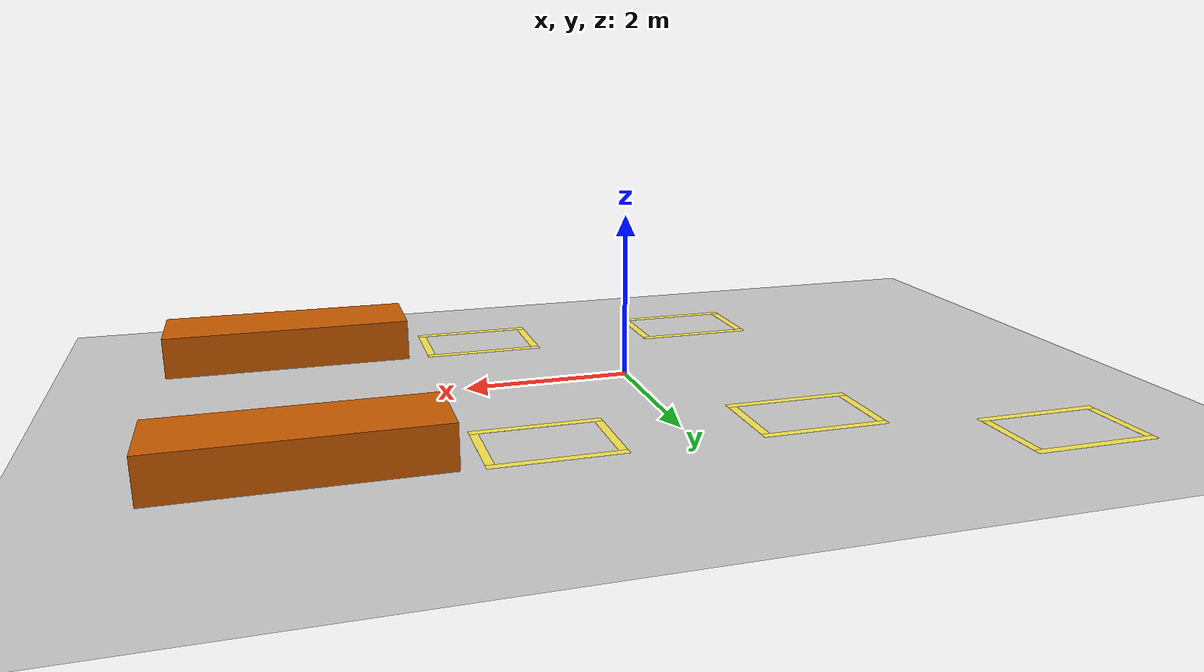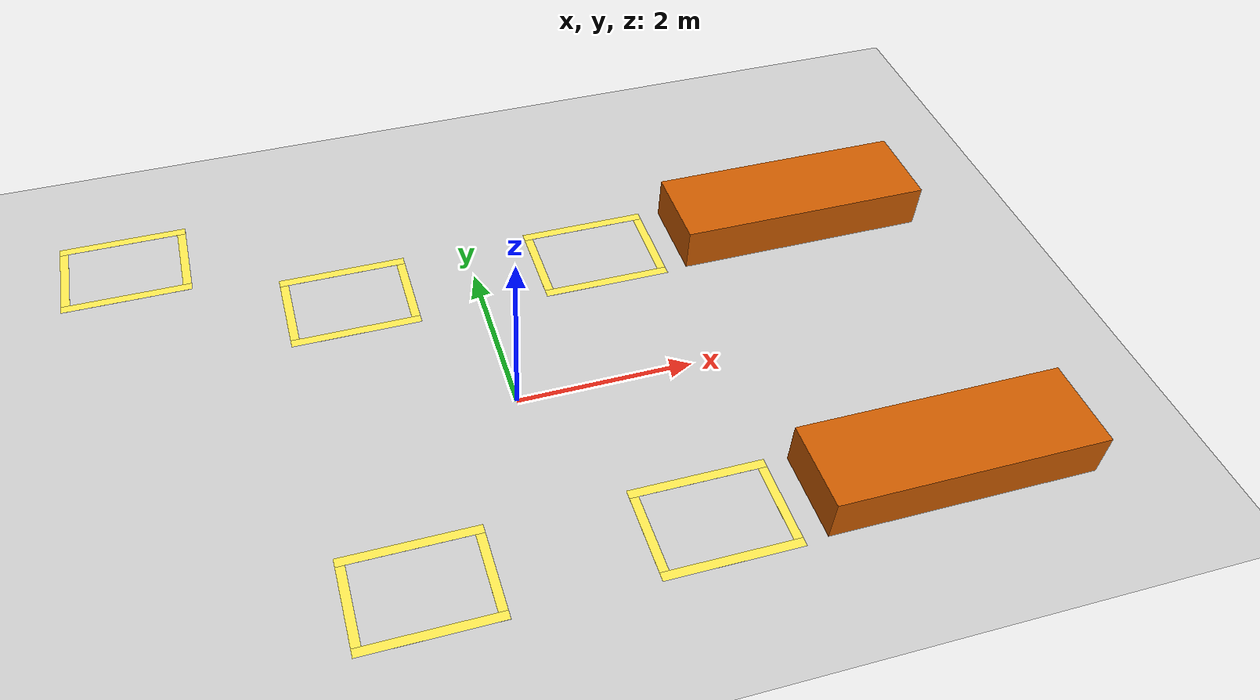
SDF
<sdf version="1.7">
 <world name="default">
  <model name="ground_plane">
   <static>1</static>
   <link name="link">
    <collision name="collision">
     <geometry><plane><normal>0 0 1</normal><size>100 100</size></plane></geometry>
     <surface>
      <contact><collide_bitmask>65535</collide_bitmask></contact>
      <friction><ode><mu>100</mu><mu2>50</mu2></ode></friction>
     </surface>
    </collision>
    <visual name="visual">
     <cast_shadows>0</cast_shadows>
     <geometry><plane><normal>0 0 1</normal><size>100 100</size></plane></geometry>
     <material>
      <script><uri>file://media/materials/scripts/gazebo.material</uri><name>Gazebo/Grey</name></script>
     </material>
    </visual>
   </link>
  </model>
  <model name="ws_3m">
   <link name="link_0">
    <inertial>
     <mass>1</mass>
     <inertia>
      <ixx>0.166667</ixx>
      <ixy>0</ixy>
      <ixz>0</ixz>
      <iyy>0.166667</iyy>
      <iyz>0</iyz>
      <izz>0.166667</izz>
     </inertia>
    </inertial>
    <visual name="visual">
     <geometry><box><size>3 1 1</size></box></geometry>
     <material>
      <lighting>1</lighting>
      <script><uri>file://media/materials/scripts/gazebo.material</uri><name>Gazebo/Grey</name></script>
      <shader type="pixel"><normal_map>__default__</normal_map></shader>
      <ambient>0.808 0.361 0 1</ambient>
      <diffuse>0.7 0.7 0.7 1</diffuse>
      <specular>0.01 0.01 0.01 1</specular>
      <emissive>0 0 0 1</emissive>
     </material>
    </visual>
    <collision name="collision">
     <geometry><box><size>3 1 1</size></box></geometry>
     <surface>
      <friction>
       <ode><mu>1</mu><mu2>1</mu2><fdir1>0 0 0</fdir1><slip1>0</slip1><slip2>0</slip2></ode>
       <torsional>
        <coefficient>1</coefficient>
        <patch_radius>0</patch_radius>
        <surface_radius>0</surface_radius>
        <use_patch_radius>1</use_patch_radius>
        <ode><slip>0</slip></ode>
       </torsional>
      </friction>
      <bounce><restitution_coefficient>0</restitution_coefficient><threshold>1e+06</threshold></bounce>
      <contact>
       <collide_without_contact>0</collide_without_contact>
       <collide_without_contact_bitmask>1</collide_without_contact_bitmask>
       <collide_bitmask>1</collide_bitmask>
       <ode>
        <soft_cfm>0</soft_cfm>
        <soft_erp>0.2</soft_erp>
        <kp>1e+13</kp>
        <kd>1</kd>
        <max_vel>0.01</max_vel>
        <min_depth>0</min_depth>
       </ode>
       <bullet>
        <split_impulse>1</split_impulse>
        <split_impulse_penetration_threshold>-0.01</split_impulse_penetration_threshold>
        <soft_cfm>0</soft_cfm>
        <soft_erp>0.2</soft_erp>
        <kp>1e+13</kp>
        <kd>1</kd>
       </bullet>
      </contact>
     </surface>
    </collision>
   </link>
   <static>1</static>
   <pose>4 2 0 0 -0 0</pose>
  </model>
  <model name="ws_3m_0">
   <link name="link_0">
    <inertial>
     <mass>1</mass>
     <inertia>
      <ixx>0.166667</ixx>
      <ixy>0</ixy>
      <ixz>0</ixz>
      <iyy>0.166667</iyy>
      <iyz>0</iyz>
      <izz>0.166667</izz>
     </inertia>
    </inertial>
    <visual name="visual">
     <geometry><box><size>3 1 1</size></box></geometry>
     <material>
      <lighting>1</lighting>
      <script><uri>file://media/materials/scripts/gazebo.material</uri><name>Gazebo/Grey</name></script>
      <shader type="pixel"><normal_map>__default__</normal_map></shader>
      <ambient>0.808 0.361 0 1</ambient>
      <diffuse>0.7 0.7 0.7 1</diffuse>
      <specular>0.01 0.01 0.01 1</specular>
      <emissive>0 0 0 1</emissive>
     </material>
    </visual>
    <collision name="collision">
     <geometry><box><size>3 1 1</size></box></geometry>
     <surface>
      <friction>
       <ode><mu>1</mu><mu2>1</mu2><fdir1>0 0 0</fdir1><slip1>0</slip1><slip2>0</slip2></ode>
       <torsional>
        <coefficient>1</coefficient>
        <patch_radius>0</patch_radius>
        <surface_radius>0</surface_radius>
        <use_patch_radius>1</use_patch_radius>
        <ode><slip>0</slip></ode>
       </torsional>
      </friction>
      <bounce><restitution_coefficient>0</restitution_coefficient><threshold>1e+06</threshold></bounce>
      <contact>
       <collide_without_contact>0</collide_without_contact>
       <collide_without_contact_bitmask>1</collide_without_contact_bitmask>
       <collide_bitmask>1</collide_bitmask>
       <ode>
        <soft_cfm>0</soft_cfm>
        <soft_erp>0.2</soft_erp>
        <kp>1e+13</kp>
        <kd>1</kd>
        <max_vel>0.01</max_vel>
        <min_depth>0</min_depth>
       </ode>
       <bullet>
        <split_impulse>1</split_impulse>
        <split_impulse_penetration_threshold>-0.01</split_impulse_penetration_threshold>
        <soft_cfm>0</soft_cfm>
        <soft_erp>0.2</soft_erp>
        <kp>1e+13</kp>
        <kd>1</kd>
       </bullet>
      </contact>
     </surface>
    </collision>
   </link>
   <static>1</static>
   <pose>4 -2 0 0 -0 0</pose>
  </model>
  <model name="strip_5">
   <link name="link_0">
    <inertial>
     <mass>1</mass>
     <inertia>
      <ixx>0.166667</ixx>
      <ixy>0</ixy>
      <ixz>0</ixz>
      <iyy>0.166667</iyy>
      <iyz>0</iyz>
      <izz>0.166667</izz>
     </inertia>
    </inertial>
    <pose>0 0.5 0 0 -0 0</pose>
    <visual name="visual">
     <geometry><box><size>1.5 0.1 0.001</size></box></geometry>
     <material>
      <lighting>1</lighting>
      <script><uri>file://media/materials/scripts/gazebo.material</uri><name>Gazebo/Grey</name></script>
      <shader type="pixel"><normal_map>__default__</normal_map></shader>
      <ambient>0.988 0.914 0.31 1</ambient>
      <diffuse>0.7 0.7 0.7 1</diffuse>
      <specular>0.01 0.01 0.01 1</specular>
      <emissive>0 0 0 1</emissive>
     </material>
    </visual>
    <collision name="collision">
     <geometry><box><size>1.5 0.1 0.001</size></box></geometry>
     <surface>
      <friction>
       <ode><mu>1</mu><mu2>1</mu2><fdir1>0 0 0</fdir1><slip1>0</slip1><slip2>0</slip2></ode>
       <torsional>
        <coefficient>1</coefficient>
        <patch_radius>0</patch_radius>
        <surface_radius>0</surface_radius>
        <use_patch_radius>1</use_patch_radius>
        <ode><slip>0</slip></ode>
       </torsional>
      </friction>
      <bounce><restitution_coefficient>0</restitution_coefficient><threshold>1e+06</threshold></bounce>
      <contact>
       <collide_without_contact>0</collide_without_contact>
       <collide_without_contact_bitmask>1</collide_without_contact_bitmask>
       <collide_bitmask>1</collide_bitmask>
       <ode>
        <soft_cfm>0</soft_cfm>
        <soft_erp>0.2</soft_erp>
        <kp>1e+13</kp>
        <kd>1</kd>
        <max_vel>0.01</max_vel>
        <min_depth>0</min_depth>
       </ode>
       <bullet>
        <split_impulse>1</split_impulse>
        <split_impulse_penetration_threshold>-0.01</split_impulse_penetration_threshold>
        <soft_cfm>0</soft_cfm>
        <soft_erp>0.2</soft_erp>
        <kp>1e+13</kp>
        <kd>1</kd>
       </bullet>
      </contact>
     </surface>
    </collision>
   </link>
   <link name="link_0_clone">
    <inertial>
     <mass>1</mass>
     <inertia>
      <ixx>0.166667</ixx>
      <ixy>0</ixy>
      <ixz>0</ixz>
      <iyy>0.166667</iyy>
      <iyz>0</iyz>
      <izz>0.166667</izz>
     </inertia>
    </inertial>
    <pose>0 -0.5 0 0 -0 0</pose>
    <visual name="visual">
     <geometry><box><size>1.5 0.1 0.001</size></box></geometry>
     <material>
      <lighting>1</lighting>
      <script><uri>file://media/materials/scripts/gazebo.material</uri><name>Gazebo/Grey</name></script>
      <shader type="pixel"><normal_map>__default__</normal_map></shader>
      <ambient>0.988 0.914 0.31 1</ambient>
      <diffuse>0.7 0.7 0.7 1</diffuse>
      <specular>0.01 0.01 0.01 1</specular>
      <emissive>0 0 0 1</emissive>
     </material>
    </visual>
    <collision name="collision">
     <geometry><box><size>1.5 0.1 0.001</size></box></geometry>
     <surface>
      <friction>
       <ode><mu>1</mu><mu2>1</mu2><fdir1>0 0 0</fdir1><slip1>0</slip1><slip2>0</slip2></ode>
       <torsional>
        <coefficient>1</coefficient>
        <patch_radius>0</patch_radius>
        <surface_radius>0</surface_radius>
        <use_patch_radius>1</use_patch_radius>
        <ode><slip>0</slip></ode>
       </torsional>
      </friction>
      <bounce><restitution_coefficient>0</restitution_coefficient><threshold>1e+06</threshold></bounce>
      <contact>
       <collide_without_contact>0</collide_without_contact>
       <collide_without_contact_bitmask>1</collide_without_contact_bitmask>
       <collide_bitmask>1</collide_bitmask>
       <ode>
        <soft_cfm>0</soft_cfm>
        <soft_erp>0.2</soft_erp>
        <kp>1e+13</kp>
        <kd>1</kd>
        <max_vel>0.01</max_vel>
        <min_depth>0</min_depth>
       </ode>
       <bullet>
        <split_impulse>1</split_impulse>
        <split_impulse_penetration_threshold>-0.01</split_impulse_penetration_threshold>
        <soft_cfm>0</soft_cfm>
        <soft_erp>0.2</soft_erp>
        <kp>1e+13</kp>
        <kd>1</kd>
       </bullet>
      </contact>
     </surface>
    </collision>
   </link>
   <link name="link_1">
    <inertial>
     <mass>1</mass>
     <inertia>
      <ixx>0.166667</ixx>
      <ixy>0</ixy>
      <ixz>0</ixz>
      <iyy>0.166667</iyy>
      <iyz>0</iyz>
      <izz>0.166667</izz>
     </inertia>
    </inertial>
    <pose>0.7 0 0 0 -0 0</pose>
    <visual name="visual">
     <geometry><box><size>0.1 0.9 0.001</size></box></geometry>
     <material>
      <lighting>1</lighting>
      <script><uri>file://media/materials/scripts/gazebo.material</uri><name>Gazebo/Grey</name></script>
      <shader type="pixel"><normal_map>__default__</normal_map></shader>
      <ambient>0.988 0.914 0.31 1</ambient>
      <diffuse>0.7 0.7 0.7 1</diffuse>
      <specular>0.01 0.01 0.01 1</specular>
      <emissive>0 0 0 1</emissive>
     </material>
    </visual>
    <collision name="collision">
     <geometry><box><size>0.1 0.9 0.001</size></box></geometry>
     <surface>
      <friction>
       <ode><mu>1</mu><mu2>1</mu2><fdir1>0 0 0</fdir1><slip1>0</slip1><slip2>0</slip2></ode>
       <torsional>
        <coefficient>1</coefficient>
        <patch_radius>0</patch_radius>
        <surface_radius>0</surface_radius>
        <use_patch_radius>1</use_patch_radius>
        <ode><slip>0</slip></ode>
       </torsional>
      </friction>
      <bounce><restitution_coefficient>0</restitution_coefficient><threshold>1e+06</threshold></bounce>
      <contact>
       <collide_without_contact>0</collide_without_contact>
       <collide_without_contact_bitmask>1</collide_without_contact_bitmask>
       <collide_bitmask>1</collide_bitmask>
       <ode>
        <soft_cfm>0</soft_cfm>
        <soft_erp>0.2</soft_erp>
        <kp>1e+13</kp>
        <kd>1</kd>
        <max_vel>0.01</max_vel>
        <min_depth>0</min_depth>
       </ode>
       <bullet>
        <split_impulse>1</split_impulse>
        <split_impulse_penetration_threshold>-0.01</split_impulse_penetration_threshold>
        <soft_cfm>0</soft_cfm>
        <soft_erp>0.2</soft_erp>
        <kp>1e+13</kp>
        <kd>1</kd>
       </bullet>
      </contact>
     </surface>
    </collision>
   </link>
   <link name="link_1_clone">
    <inertial>
     <mass>1</mass>
     <inertia>
      <ixx>0.166667</ixx>
      <ixy>0</ixy>
      <ixz>0</ixz>
      <iyy>0.166667</iyy>
      <iyz>0</iyz>
      <izz>0.166667</izz>
     </inertia>
    </inertial>
    <pose>-0.7 0 0 0 -0 0</pose>
    <visual name="visual">
     <geometry><box><size>0.1 0.9 0.001</size></box></geometry>
     <material>
      <lighting>1</lighting>
      <script><uri>file://media/materials/scripts/gazebo.material</uri><name>Gazebo/Grey</name></script>
      <shader type="pixel"><normal_map>__default__</normal_map></shader>
      <ambient>0.988 0.914 0.31 1</ambient>
      <diffuse>0.7 0.7 0.7 1</diffuse>
      <specular>0.01 0.01 0.01 1</specular>
      <emissive>0 0 0 1</emissive>
     </material>
    </visual>
    <collision name="collision">
     <geometry><box><size>0.1 0.9 0.001</size></box></geometry>
     <surface>
      <friction>
       <ode><mu>1</mu><mu2>1</mu2><fdir1>0 0 0</fdir1><slip1>0</slip1><slip2>0</slip2></ode>
       <torsional>
        <coefficient>1</coefficient>
        <patch_radius>0</patch_radius>
        <surface_radius>0</surface_radius>
        <use_patch_radius>1</use_patch_radius>
        <ode><slip>0</slip></ode>
       </torsional>
      </friction>
      <bounce><restitution_coefficient>0</restitution_coefficient><threshold>1e+06</threshold></bounce>
      <contact>
       <collide_without_contact>0</collide_without_contact>
       <collide_without_contact_bitmask>1</collide_without_contact_bitmask>
       <collide_bitmask>1</collide_bitmask>
       <ode>
        <soft_cfm>0</soft_cfm>
        <soft_erp>0.2</soft_erp>
        <kp>1e+13</kp>
        <kd>1</kd>
        <max_vel>0.01</max_vel>
        <min_depth>0</min_depth>
       </ode>
       <bullet>
        <split_impulse>1</split_impulse>
        <split_impulse_penetration_threshold>-0.01</split_impulse_penetration_threshold>
        <soft_cfm>0</soft_cfm>
        <soft_erp>0.2</soft_erp>
        <kp>1e+13</kp>
        <kd>1</kd>
       </bullet>
      </contact>
     </surface>
    </collision>
   </link>
   <static>1</static>
   <pose>1.5 2 0 0 -0 0</pose>
  </model>
  <model name="strip_6">
   <link name="link_0">
    <inertial>
     <mass>1</mass>
     <inertia>
      <ixx>0.166667</ixx>
      <ixy>0</ixy>
      <ixz>0</ixz>
      <iyy>0.166667</iyy>
      <iyz>0</iyz>
      <izz>0.166667</izz>
     </inertia>
    </inertial>
    <pose>0 0.5 0 0 -0 0</pose>
    <visual name="visual">
     <geometry><box><size>1.5 0.1 0.001</size></box></geometry>
     <material>
      <lighting>1</lighting>
      <script><uri>file://media/materials/scripts/gazebo.material</uri><name>Gazebo/Grey</name></script>
      <shader type="pixel"><normal_map>__default__</normal_map></shader>
      <ambient>0.988 0.914 0.31 1</ambient>
      <diffuse>0.7 0.7 0.7 1</diffuse>
      <specular>0.01 0.01 0.01 1</specular>
      <emissive>0 0 0 1</emissive>
     </material>
    </visual>
    <collision name="collision">
     <geometry><box><size>1.5 0.1 0.001</size></box></geometry>
     <surface>
      <friction>
       <ode><mu>1</mu><mu2>1</mu2><fdir1>0 0 0</fdir1><slip1>0</slip1><slip2>0</slip2></ode>
       <torsional>
        <coefficient>1</coefficient>
        <patch_radius>0</patch_radius>
        <surface_radius>0</surface_radius>
        <use_patch_radius>1</use_patch_radius>
        <ode><slip>0</slip></ode>
       </torsional>
      </friction>
      <bounce><restitution_coefficient>0</restitution_coefficient><threshold>1e+06</threshold></bounce>
      <contact>
       <collide_without_contact>0</collide_without_contact>
       <collide_without_contact_bitmask>1</collide_without_contact_bitmask>
       <collide_bitmask>1</collide_bitmask>
       <ode>
        <soft_cfm>0</soft_cfm>
        <soft_erp>0.2</soft_erp>
        <kp>1e+13</kp>
        <kd>1</kd>
        <max_vel>0.01</max_vel>
        <min_depth>0</min_depth>
       </ode>
       <bullet>
        <split_impulse>1</split_impulse>
        <split_impulse_penetration_threshold>-0.01</split_impulse_penetration_threshold>
        <soft_cfm>0</soft_cfm>
        <soft_erp>0.2</soft_erp>
        <kp>1e+13</kp>
        <kd>1</kd>
       </bullet>
      </contact>
     </surface>
    </collision>
   </link>
   <link name="link_0_clone">
    <inertial>
     <mass>1</mass>
     <inertia>
      <ixx>0.166667</ixx>
      <ixy>0</ixy>
      <ixz>0</ixz>
      <iyy>0.166667</iyy>
      <iyz>0</iyz>
      <izz>0.166667</izz>
     </inertia>
    </inertial>
    <pose>0 -0.5 0 0 -0 0</pose>
    <visual name="visual">
     <geometry><box><size>1.5 0.1 0.001</size></box></geometry>
     <material>
      <lighting>1</lighting>
      <script><uri>file://media/materials/scripts/gazebo.material</uri><name>Gazebo/Grey</name></script>
      <shader type="pixel"><normal_map>__default__</normal_map></shader>
      <ambient>0.988 0.914 0.31 1</ambient>
      <diffuse>0.7 0.7 0.7 1</diffuse>
      <specular>0.01 0.01 0.01 1</specular>
      <emissive>0 0 0 1</emissive>
     </material>
    </visual>
    <collision name="collision">
     <geometry><box><size>1.5 0.1 0.001</size></box></geometry>
     <surface>
      <friction>
       <ode><mu>1</mu><mu2>1</mu2><fdir1>0 0 0</fdir1><slip1>0</slip1><slip2>0</slip2></ode>
       <torsional>
        <coefficient>1</coefficient>
        <patch_radius>0</patch_radius>
        <surface_radius>0</surface_radius>
        <use_patch_radius>1</use_patch_radius>
        <ode><slip>0</slip></ode>
       </torsional>
      </friction>
      <bounce><restitution_coefficient>0</restitution_coefficient><threshold>1e+06</threshold></bounce>
      <contact>
       <collide_without_contact>0</collide_without_contact>
       <collide_without_contact_bitmask>1</collide_without_contact_bitmask>
       <collide_bitmask>1</collide_bitmask>
       <ode>
        <soft_cfm>0</soft_cfm>
        <soft_erp>0.2</soft_erp>
        <kp>1e+13</kp>
        <kd>1</kd>
        <max_vel>0.01</max_vel>
        <min_depth>0</min_depth>
       </ode>
       <bullet>
        <split_impulse>1</split_impulse>
        <split_impulse_penetration_threshold>-0.01</split_impulse_penetration_threshold>
        <soft_cfm>0</soft_cfm>
        <soft_erp>0.2</soft_erp>
        <kp>1e+13</kp>
        <kd>1</kd>
       </bullet>
      </contact>
     </surface>
    </collision>
   </link>
   <link name="link_1">
    <inertial>
     <mass>1</mass>
     <inertia>
      <ixx>0.166667</ixx>
      <ixy>0</ixy>
      <ixz>0</ixz>
      <iyy>0.166667</iyy>
      <iyz>0</iyz>
      <izz>0.166667</izz>
     </inertia>
    </inertial>
    <pose>0.7 0 0 0 -0 0</pose>
    <visual name="visual">
     <geometry><box><size>0.1 0.9 0.001</size></box></geometry>
     <material>
      <lighting>1</lighting>
      <script><uri>file://media/materials/scripts/gazebo.material</uri><name>Gazebo/Grey</name></script>
      <shader type="pixel"><normal_map>__default__</normal_map></shader>
      <ambient>0.988 0.914 0.31 1</ambient>
      <diffuse>0.7 0.7 0.7 1</diffuse>
      <specular>0.01 0.01 0.01 1</specular>
      <emissive>0 0 0 1</emissive>
     </material>
    </visual>
    <collision name="collision">
     <geometry><box><size>0.1 0.9 0.001</size></box></geometry>
     <surface>
      <friction>
       <ode><mu>1</mu><mu2>1</mu2><fdir1>0 0 0</fdir1><slip1>0</slip1><slip2>0</slip2></ode>
       <torsional>
        <coefficient>1</coefficient>
        <patch_radius>0</patch_radius>
        <surface_radius>0</surface_radius>
        <use_patch_radius>1</use_patch_radius>
        <ode><slip>0</slip></ode>
       </torsional>
      </friction>
      <bounce><restitution_coefficient>0</restitution_coefficient><threshold>1e+06</threshold></bounce>
      <contact>
       <collide_without_contact>0</collide_without_contact>
       <collide_without_contact_bitmask>1</collide_without_contact_bitmask>
       <collide_bitmask>1</collide_bitmask>
       <ode>
        <soft_cfm>0</soft_cfm>
        <soft_erp>0.2</soft_erp>
        <kp>1e+13</kp>
        <kd>1</kd>
        <max_vel>0.01</max_vel>
        <min_depth>0</min_depth>
       </ode>
       <bullet>
        <split_impulse>1</split_impulse>
        <split_impulse_penetration_threshold>-0.01</split_impulse_penetration_threshold>
        <soft_cfm>0</soft_cfm>
        <soft_erp>0.2</soft_erp>
        <kp>1e+13</kp>
        <kd>1</kd>
       </bullet>
      </contact>
     </surface>
    </collision>
   </link>
   <link name="link_1_clone">
    <inertial>
     <mass>1</mass>
     <inertia>
      <ixx>0.166667</ixx>
      <ixy>0</ixy>
      <ixz>0</ixz>
      <iyy>0.166667</iyy>
      <iyz>0</iyz>
      <izz>0.166667</izz>
     </inertia>
    </inertial>
    <pose>-0.7 0 0 0 -0 0</pose>
    <visual name="visual">
     <geometry><box><size>0.1 0.9 0.001</size></box></geometry>
     <material>
      <lighting>1</lighting>
      <script><uri>file://media/materials/scripts/gazebo.material</uri><name>Gazebo/Grey</name></script>
      <shader type="pixel"><normal_map>__default__</normal_map></shader>
      <ambient>0.988 0.914 0.31 1</ambient>
      <diffuse>0.7 0.7 0.7 1</diffuse>
      <specular>0.01 0.01 0.01 1</specular>
      <emissive>0 0 0 1</emissive>
     </material>
    </visual>
    <collision name="collision">
     <geometry><box><size>0.1 0.9 0.001</size></box></geometry>
     <surface>
      <friction>
       <ode><mu>1</mu><mu2>1</mu2><fdir1>0 0 0</fdir1><slip1>0</slip1><slip2>0</slip2></ode>
       <torsional>
        <coefficient>1</coefficient>
        <patch_radius>0</patch_radius>
        <surface_radius>0</surface_radius>
        <use_patch_radius>1</use_patch_radius>
        <ode><slip>0</slip></ode>
       </torsional>
      </friction>
      <bounce><restitution_coefficient>0</restitution_coefficient><threshold>1e+06</threshold></bounce>
      <contact>
       <collide_without_contact>0</collide_without_contact>
       <collide_without_contact_bitmask>1</collide_without_contact_bitmask>
       <collide_bitmask>1</collide_bitmask>
       <ode>
        <soft_cfm>0</soft_cfm>
        <soft_erp>0.2</soft_erp>
        <kp>1e+13</kp>
        <kd>1</kd>
        <max_vel>0.01</max_vel>
        <min_depth>0</min_depth>
       </ode>
       <bullet>
        <split_impulse>1</split_impulse>
        <split_impulse_penetration_threshold>-0.01</split_impulse_penetration_threshold>
        <soft_cfm>0</soft_cfm>
        <soft_erp>0.2</soft_erp>
        <kp>1e+13</kp>
        <kd>1</kd>
       </bullet>
      </contact>
     </surface>
    </collision>
   </link>
   <static>1</static>
   <pose>1.5 -2 0 0 -0 0</pose>
  </model>
  <model name="strip_7">
   <link name="link_0">
    <inertial>
     <mass>1</mass>
     <inertia>
      <ixx>0.166667</ixx>
      <ixy>0</ixy>
      <ixz>0</ixz>
      <iyy>0.166667</iyy>
      <iyz>0</iyz>
      <izz>0.166667</izz>
     </inertia>
    </inertial>
    <pose>0 0.5 0 0 -0 0</pose>
    <visual name="visual">
     <geometry><box><size>1.5 0.1 0.001</size></box></geometry>
     <material>
      <lighting>1</lighting>
      <script><uri>file://media/materials/scripts/gazebo.material</uri><name>Gazebo/Grey</name></script>
      <shader type="pixel"><normal_map>__default__</normal_map></shader>
      <ambient>0.988 0.914 0.31 1</ambient>
      <diffuse>0.7 0.7 0.7 1</diffuse>
      <specular>0.01 0.01 0.01 1</specular>
      <emissive>0 0 0 1</emissive>
     </material>
    </visual>
    <collision name="collision">
     <geometry><box><size>1.5 0.1 0.001</size></box></geometry>
     <surface>
      <friction>
       <ode><mu>1</mu><mu2>1</mu2><fdir1>0 0 0</fdir1><slip1>0</slip1><slip2>0</slip2></ode>
       <torsional>
        <coefficient>1</coefficient>
        <patch_radius>0</patch_radius>
        <surface_radius>0</surface_radius>
        <use_patch_radius>1</use_patch_radius>
        <ode><slip>0</slip></ode>
       </torsional>
      </friction>
      <bounce><restitution_coefficient>0</restitution_coefficient><threshold>1e+06</threshold></bounce>
      <contact>
       <collide_without_contact>0</collide_without_contact>
       <collide_without_contact_bitmask>1</collide_without_contact_bitmask>
       <collide_bitmask>1</collide_bitmask>
       <ode>
        <soft_cfm>0</soft_cfm>
        <soft_erp>0.2</soft_erp>
        <kp>1e+13</kp>
        <kd>1</kd>
        <max_vel>0.01</max_vel>
        <min_depth>0</min_depth>
       </ode>
       <bullet>
        <split_impulse>1</split_impulse>
        <split_impulse_penetration_threshold>-0.01</split_impulse_penetration_threshold>
        <soft_cfm>0</soft_cfm>
        <soft_erp>0.2</soft_erp>
        <kp>1e+13</kp>
        <kd>1</kd>
       </bullet>
      </contact>
     </surface>
    </collision>
   </link>
   <link name="link_0_clone">
    <inertial>
     <mass>1</mass>
     <inertia>
      <ixx>0.166667</ixx>
      <ixy>0</ixy>
      <ixz>0</ixz>
      <iyy>0.166667</iyy>
      <iyz>0</iyz>
      <izz>0.166667</izz>
     </inertia>
    </inertial>
    <pose>0 -0.5 0 0 -0 0</pose>
    <visual name="visual">
     <geometry><box><size>1.5 0.1 0.001</size></box></geometry>
     <material>
      <lighting>1</lighting>
      <script><uri>file://media/materials/scripts/gazebo.material</uri><name>Gazebo/Grey</name></script>
      <shader type="pixel"><normal_map>__default__</normal_map></shader>
      <ambient>0.988 0.914 0.31 1</ambient>
      <diffuse>0.7 0.7 0.7 1</diffuse>
      <specular>0.01 0.01 0.01 1</specular>
      <emissive>0 0 0 1</emissive>
     </material>
    </visual>
    <collision name="collision">
     <geometry><box><size>1.5 0.1 0.001</size></box></geometry>
     <surface>
      <friction>
       <ode><mu>1</mu><mu2>1</mu2><fdir1>0 0 0</fdir1><slip1>0</slip1><slip2>0</slip2></ode>
       <torsional>
        <coefficient>1</coefficient>
        <patch_radius>0</patch_radius>
        <surface_radius>0</surface_radius>
        <use_patch_radius>1</use_patch_radius>
        <ode><slip>0</slip></ode>
       </torsional>
      </friction>
      <bounce><restitution_coefficient>0</restitution_coefficient><threshold>1e+06</threshold></bounce>
      <contact>
       <collide_without_contact>0</collide_without_contact>
       <collide_without_contact_bitmask>1</collide_without_contact_bitmask>
       <collide_bitmask>1</collide_bitmask>
       <ode>
        <soft_cfm>0</soft_cfm>
        <soft_erp>0.2</soft_erp>
        <kp>1e+13</kp>
        <kd>1</kd>
        <max_vel>0.01</max_vel>
        <min_depth>0</min_depth>
       </ode>
       <bullet>
        <split_impulse>1</split_impulse>
        <split_impulse_penetration_threshold>-0.01</split_impulse_penetration_threshold>
        <soft_cfm>0</soft_cfm>
        <soft_erp>0.2</soft_erp>
        <kp>1e+13</kp>
        <kd>1</kd>
       </bullet>
      </contact>
     </surface>
    </collision>
   </link>
   <link name="link_1">
    <inertial>
     <mass>1</mass>
     <inertia>
      <ixx>0.166667</ixx>
      <ixy>0</ixy>
      <ixz>0</ixz>
      <iyy>0.166667</iyy>
      <iyz>0</iyz>
      <izz>0.166667</izz>
     </inertia>
    </inertial>
    <pose>0.7 0 0 0 -0 0</pose>
    <visual name="visual">
     <geometry><box><size>0.1 0.9 0.001</size></box></geometry>
     <material>
      <lighting>1</lighting>
      <script><uri>file://media/materials/scripts/gazebo.material</uri><name>Gazebo/Grey</name></script>
      <shader type="pixel"><normal_map>__default__</normal_map></shader>
      <ambient>0.988 0.914 0.31 1</ambient>
      <diffuse>0.7 0.7 0.7 1</diffuse>
      <specular>0.01 0.01 0.01 1</specular>
      <emissive>0 0 0 1</emissive>
     </material>
    </visual>
    <collision name="collision">
     <geometry><box><size>0.1 0.9 0.001</size></box></geometry>
     <surface>
      <friction>
       <ode><mu>1</mu><mu2>1</mu2><fdir1>0 0 0</fdir1><slip1>0</slip1><slip2>0</slip2></ode>
       <torsional>
        <coefficient>1</coefficient>
        <patch_radius>0</patch_radius>
        <surface_radius>0</surface_radius>
        <use_patch_radius>1</use_patch_radius>
        <ode><slip>0</slip></ode>
       </torsional>
      </friction>
      <bounce><restitution_coefficient>0</restitution_coefficient><threshold>1e+06</threshold></bounce>
      <contact>
       <collide_without_contact>0</collide_without_contact>
       <collide_without_contact_bitmask>1</collide_without_contact_bitmask>
       <collide_bitmask>1</collide_bitmask>
       <ode>
        <soft_cfm>0</soft_cfm>
        <soft_erp>0.2</soft_erp>
        <kp>1e+13</kp>
        <kd>1</kd>
        <max_vel>0.01</max_vel>
        <min_depth>0</min_depth>
       </ode>
       <bullet>
        <split_impulse>1</split_impulse>
        <split_impulse_penetration_threshold>-0.01</split_impulse_penetration_threshold>
        <soft_cfm>0</soft_cfm>
        <soft_erp>0.2</soft_erp>
        <kp>1e+13</kp>
        <kd>1</kd>
       </bullet>
      </contact>
     </surface>
    </collision>
   </link>
   <link name="link_1_clone">
    <inertial>
     <mass>1</mass>
     <inertia>
      <ixx>0.166667</ixx>
      <ixy>0</ixy>
      <ixz>0</ixz>
      <iyy>0.166667</iyy>
      <iyz>0</iyz>
      <izz>0.166667</izz>
     </inertia>
    </inertial>
    <pose>-0.7 0 0 0 -0 0</pose>
    <visual name="visual">
     <geometry><box><size>0.1 0.9 0.001</size></box></geometry>
     <material>
      <lighting>1</lighting>
      <script><uri>file://media/materials/scripts/gazebo.material</uri><name>Gazebo/Grey</name></script>
      <shader type="pixel"><normal_map>__default__</normal_map></shader>
      <ambient>0.988 0.914 0.31 1</ambient>
      <diffuse>0.7 0.7 0.7 1</diffuse>
      <specular>0.01 0.01 0.01 1</specular>
      <emissive>0 0 0 1</emissive>
     </material>
    </visual>
    <collision name="collision">
     <geometry><box><size>0.1 0.9 0.001</size></box></geometry>
     <surface>
      <friction>
       <ode><mu>1</mu><mu2>1</mu2><fdir1>0 0 0</fdir1><slip1>0</slip1><slip2>0</slip2></ode>
       <torsional>
        <coefficient>1</coefficient>
        <patch_radius>0</patch_radius>
        <surface_radius>0</surface_radius>
        <use_patch_radius>1</use_patch_radius>
        <ode><slip>0</slip></ode>
       </torsional>
      </friction>
      <bounce><restitution_coefficient>0</restitution_coefficient><threshold>1e+06</threshold></bounce>
      <contact>
       <collide_without_contact>0</collide_without_contact>
       <collide_without_contact_bitmask>1</collide_without_contact_bitmask>
       <collide_bitmask>1</collide_bitmask>
       <ode>
        <soft_cfm>0</soft_cfm>
        <soft_erp>0.2</soft_erp>
        <kp>1e+13</kp>
        <kd>1</kd>
        <max_vel>0.01</max_vel>
        <min_depth>0</min_depth>
       </ode>
       <bullet>
        <split_impulse>1</split_impulse>
        <split_impulse_penetration_threshold>-0.01</split_impulse_penetration_threshold>
        <soft_cfm>0</soft_cfm>
        <soft_erp>0.2</soft_erp>
        <kp>1e+13</kp>
        <kd>1</kd>
       </bullet>
      </contact>
     </surface>
    </collision>
   </link>
   <static>1</static>
   <pose>-1.5 2 0 0 -0 0</pose>
  </model>
  <model name="strip_8">
   <link name="link_0">
    <inertial>
     <mass>1</mass>
     <inertia>
      <ixx>0.166667</ixx>
      <ixy>0</ixy>
      <ixz>0</ixz>
      <iyy>0.166667</iyy>
      <iyz>0</iyz>
      <izz>0.166667</izz>
     </inertia>
    </inertial>
    <pose>0 0.5 0 0 -0 0</pose>
    <visual name="visual">
     <geometry><box><size>1.5 0.1 0.001</size></box></geometry>
     <material>
      <lighting>1</lighting>
      <script><uri>file://media/materials/scripts/gazebo.material</uri><name>Gazebo/Grey</name></script>
      <shader type="pixel"><normal_map>__default__</normal_map></shader>
      <ambient>0.988 0.914 0.31 1</ambient>
      <diffuse>0.7 0.7 0.7 1</diffuse>
      <specular>0.01 0.01 0.01 1</specular>
      <emissive>0 0 0 1</emissive>
     </material>
    </visual>
    <collision name="collision">
     <geometry><box><size>1.5 0.1 0.001</size></box></geometry>
     <surface>
      <friction>
       <ode><mu>1</mu><mu2>1</mu2><fdir1>0 0 0</fdir1><slip1>0</slip1><slip2>0</slip2></ode>
       <torsional>
        <coefficient>1</coefficient>
        <patch_radius>0</patch_radius>
        <surface_radius>0</surface_radius>
        <use_patch_radius>1</use_patch_radius>
        <ode><slip>0</slip></ode>
       </torsional>
      </friction>
      <bounce><restitution_coefficient>0</restitution_coefficient><threshold>1e+06</threshold></bounce>
      <contact>
       <collide_without_contact>0</collide_without_contact>
       <collide_without_contact_bitmask>1</collide_without_contact_bitmask>
       <collide_bitmask>1</collide_bitmask>
       <ode>
        <soft_cfm>0</soft_cfm>
        <soft_erp>0.2</soft_erp>
        <kp>1e+13</kp>
        <kd>1</kd>
        <max_vel>0.01</max_vel>
        <min_depth>0</min_depth>
       </ode>
       <bullet>
        <split_impulse>1</split_impulse>
        <split_impulse_penetration_threshold>-0.01</split_impulse_penetration_threshold>
        <soft_cfm>0</soft_cfm>
        <soft_erp>0.2</soft_erp>
        <kp>1e+13</kp>
        <kd>1</kd>
       </bullet>
      </contact>
     </surface>
    </collision>
   </link>
   <link name="link_0_clone">
    <inertial>
     <mass>1</mass>
     <inertia>
      <ixx>0.166667</ixx>
      <ixy>0</ixy>
      <ixz>0</ixz>
      <iyy>0.166667</iyy>
      <iyz>0</iyz>
      <izz>0.166667</izz>
     </inertia>
    </inertial>
    <pose>0 -0.5 0 0 -0 0</pose>
    <visual name="visual">
     <geometry><box><size>1.5 0.1 0.001</size></box></geometry>
     <material>
      <lighting>1</lighting>
      <script><uri>file://media/materials/scripts/gazebo.material</uri><name>Gazebo/Grey</name></script>
      <shader type="pixel"><normal_map>__default__</normal_map></shader>
      <ambient>0.988 0.914 0.31 1</ambient>
      <diffuse>0.7 0.7 0.7 1</diffuse>
      <specular>0.01 0.01 0.01 1</specular>
      <emissive>0 0 0 1</emissive>
     </material>
    </visual>
    <collision name="collision">
     <geometry><box><size>1.5 0.1 0.001</size></box></geometry>
     <surface>
      <friction>
       <ode><mu>1</mu><mu2>1</mu2><fdir1>0 0 0</fdir1><slip1>0</slip1><slip2>0</slip2></ode>
       <torsional>
        <coefficient>1</coefficient>
        <patch_radius>0</patch_radius>
        <surface_radius>0</surface_radius>
        <use_patch_radius>1</use_patch_radius>
        <ode><slip>0</slip></ode>
       </torsional>
      </friction>
      <bounce><restitution_coefficient>0</restitution_coefficient><threshold>1e+06</threshold></bounce>
      <contact>
       <collide_without_contact>0</collide_without_contact>
       <collide_without_contact_bitmask>1</collide_without_contact_bitmask>
       <collide_bitmask>1</collide_bitmask>
       <ode>
        <soft_cfm>0</soft_cfm>
        <soft_erp>0.2</soft_erp>
        <kp>1e+13</kp>
        <kd>1</kd>
        <max_vel>0.01</max_vel>
        <min_depth>0</min_depth>
       </ode>
       <bullet>
        <split_impulse>1</split_impulse>
        <split_impulse_penetration_threshold>-0.01</split_impulse_penetration_threshold>
        <soft_cfm>0</soft_cfm>
        <soft_erp>0.2</soft_erp>
        <kp>1e+13</kp>
        <kd>1</kd>
       </bullet>
      </contact>
     </surface>
    </collision>
   </link>
   <link name="link_1">
    <inertial>
     <mass>1</mass>
     <inertia>
      <ixx>0.166667</ixx>
      <ixy>0</ixy>
      <ixz>0</ixz>
      <iyy>0.166667</iyy>
      <iyz>0</iyz>
      <izz>0.166667</izz>
     </inertia>
    </inertial>
    <pose>0.7 0 0 0 -0 0</pose>
    <visual name="visual">
     <geometry><box><size>0.1 0.9 0.001</size></box></geometry>
     <material>
      <lighting>1</lighting>
      <script><uri>file://media/materials/scripts/gazebo.material</uri><name>Gazebo/Grey</name></script>
      <shader type="pixel"><normal_map>__default__</normal_map></shader>
      <ambient>0.988 0.914 0.31 1</ambient>
      <diffuse>0.7 0.7 0.7 1</diffuse>
      <specular>0.01 0.01 0.01 1</specular>
      <emissive>0 0 0 1</emissive>
     </material>
    </visual>
    <collision name="collision">
     <geometry><box><size>0.1 0.9 0.001</size></box></geometry>
     <surface>
      <friction>
       <ode><mu>1</mu><mu2>1</mu2><fdir1>0 0 0</fdir1><slip1>0</slip1><slip2>0</slip2></ode>
       <torsional>
        <coefficient>1</coefficient>
        <patch_radius>0</patch_radius>
        <surface_radius>0</surface_radius>
        <use_patch_radius>1</use_patch_radius>
        <ode><slip>0</slip></ode>
       </torsional>
      </friction>
      <bounce><restitution_coefficient>0</restitution_coefficient><threshold>1e+06</threshold></bounce>
      <contact>
       <collide_without_contact>0</collide_without_contact>
       <collide_without_contact_bitmask>1</collide_without_contact_bitmask>
       <collide_bitmask>1</collide_bitmask>
       <ode>
        <soft_cfm>0</soft_cfm>
        <soft_erp>0.2</soft_erp>
        <kp>1e+13</kp>
        <kd>1</kd>
        <max_vel>0.01</max_vel>
        <min_depth>0</min_depth>
       </ode>
       <bullet>
        <split_impulse>1</split_impulse>
        <split_impulse_penetration_threshold>-0.01</split_impulse_penetration_threshold>
        <soft_cfm>0</soft_cfm>
        <soft_erp>0.2</soft_erp>
        <kp>1e+13</kp>
        <kd>1</kd>
       </bullet>
      </contact>
     </surface>
    </collision>
   </link>
   <link name="link_1_clone">
    <inertial>
     <mass>1</mass>
     <inertia>
      <ixx>0.166667</ixx>
      <ixy>0</ixy>
      <ixz>0</ixz>
      <iyy>0.166667</iyy>
      <iyz>0</iyz>
      <izz>0.166667</izz>
     </inertia>
    </inertial>
    <pose>-0.7 0 0 0 -0 0</pose>
    <visual name="visual">
     <geometry><box><size>0.1 0.9 0.001</size></box></geometry>
     <material>
      <lighting>1</lighting>
      <script><uri>file://media/materials/scripts/gazebo.material</uri><name>Gazebo/Grey</name></script>
      <shader type="pixel"><normal_map>__default__</normal_map></shader>
      <ambient>0.988 0.914 0.31 1</ambient>
      <diffuse>0.7 0.7 0.7 1</diffuse>
      <specular>0.01 0.01 0.01 1</specular>
      <emissive>0 0 0 1</emissive>
     </material>
    </visual>
    <collision name="collision">
     <geometry><box><size>0.1 0.9 0.001</size></box></geometry>
     <surface>
      <friction>
       <ode><mu>1</mu><mu2>1</mu2><fdir1>0 0 0</fdir1><slip1>0</slip1><slip2>0</slip2></ode>
       <torsional>
        <coefficient>1</coefficient>
        <patch_radius>0</patch_radius>
        <surface_radius>0</surface_radius>
        <use_patch_radius>1</use_patch_radius>
        <ode><slip>0</slip></ode>
       </torsional>
      </friction>
      <bounce><restitution_coefficient>0</restitution_coefficient><threshold>1e+06</threshold></bounce>
      <contact>
       <collide_without_contact>0</collide_without_contact>
       <collide_without_contact_bitmask>1</collide_without_contact_bitmask>
       <collide_bitmask>1</collide_bitmask>
       <ode>
        <soft_cfm>0</soft_cfm>
        <soft_erp>0.2</soft_erp>
        <kp>1e+13</kp>
        <kd>1</kd>
        <max_vel>0.01</max_vel>
        <min_depth>0</min_depth>
       </ode>
       <bullet>
        <split_impulse>1</split_impulse>
        <split_impulse_penetration_threshold>-0.01</split_impulse_penetration_threshold>
        <soft_cfm>0</soft_cfm>
        <soft_erp>0.2</soft_erp>
        <kp>1e+13</kp>
        <kd>1</kd>
       </bullet>
      </contact>
     </surface>
    </collision>
   </link>
   <static>1</static>
   <pose>-1.5 -2 0 0 -0 0</pose>
  </model>
  <model name="strip_10">
   <link name="link_0">
    <inertial>
     <mass>1</mass>
     <inertia>
      <ixx>0.166667</ixx>
      <ixy>0</ixy>
      <ixz>0</ixz>
      <iyy>0.166667</iyy>
      <iyz>0</iyz>
      <izz>0.166667</izz>
     </inertia>
    </inertial>
    <pose>0 0.5 0 0 -0 0</pose>
    <visual name="visual">
     <geometry><box><size>1.5 0.1 0.001</size></box></geometry>
     <material>
      <lighting>1</lighting>
      <script><uri>file://media/materials/scripts/gazebo.material</uri><name>Gazebo/Grey</name></script>
      <shader type="pixel"><normal_map>__default__</normal_map></shader>
      <ambient>0.988 0.914 0.31 1</ambient>
      <diffuse>0.7 0.7 0.7 1</diffuse>
      <specular>0.01 0.01 0.01 1</specular>
      <emissive>0 0 0 1</emissive>
     </material>
    </visual>
    <collision name="collision">
     <geometry><box><size>1.5 0.1 0.001</size></box></geometry>
     <surface>
      <friction>
       <ode><mu>1</mu><mu2>1</mu2><fdir1>0 0 0</fdir1><slip1>0</slip1><slip2>0</slip2></ode>
       <torsional>
        <coefficient>1</coefficient>
        <patch_radius>0</patch_radius>
        <surface_radius>0</surface_radius>
        <use_patch_radius>1</use_patch_radius>
        <ode><slip>0</slip></ode>
       </torsional>
      </friction>
      <bounce><restitution_coefficient>0</restitution_coefficient><threshold>1e+06</threshold></bounce>
      <contact>
       <collide_without_contact>0</collide_without_contact>
       <collide_without_contact_bitmask>1</collide_without_contact_bitmask>
       <collide_bitmask>1</collide_bitmask>
       <ode>
        <soft_cfm>0</soft_cfm>
        <soft_erp>0.2</soft_erp>
        <kp>1e+13</kp>
        <kd>1</kd>
        <max_vel>0.01</max_vel>
        <min_depth>0</min_depth>
       </ode>
       <bullet>
        <split_impulse>1</split_impulse>
        <split_impulse_penetration_threshold>-0.01</split_impulse_penetration_threshold>
        <soft_cfm>0</soft_cfm>
        <soft_erp>0.2</soft_erp>
        <kp>1e+13</kp>
        <kd>1</kd>
       </bullet>
      </contact>
     </surface>
    </collision>
   </link>
   <link name="link_0_clone">
    <inertial>
     <mass>1</mass>
     <inertia>
      <ixx>0.166667</ixx>
      <ixy>0</ixy>
      <ixz>0</ixz>
      <iyy>0.166667</iyy>
      <iyz>0</iyz>
      <izz>0.166667</izz>
     </inertia>
    </inertial>
    <pose>0 -0.5 0 0 -0 0</pose>
    <visual name="visual">
     <geometry><box><size>1.5 0.1 0.001</size></box></geometry>
     <material>
      <lighting>1</lighting>
      <script><uri>file://media/materials/scripts/gazebo.material</uri><name>Gazebo/Grey</name></script>
      <shader type="pixel"><normal_map>__default__</normal_map></shader>
      <ambient>0.988 0.914 0.31 1</ambient>
      <diffuse>0.7 0.7 0.7 1</diffuse>
      <specular>0.01 0.01 0.01 1</specular>
      <emissive>0 0 0 1</emissive>
     </material>
    </visual>
    <collision name="collision">
     <geometry><box><size>1.5 0.1 0.001</size></box></geometry>
     <surface>
      <friction>
       <ode><mu>1</mu><mu2>1</mu2><fdir1>0 0 0</fdir1><slip1>0</slip1><slip2>0</slip2></ode>
       <torsional>
        <coefficient>1</coefficient>
        <patch_radius>0</patch_radius>
        <surface_radius>0</surface_radius>
        <use_patch_radius>1</use_patch_radius>
        <ode><slip>0</slip></ode>
       </torsional>
      </friction>
      <bounce><restitution_coefficient>0</restitution_coefficient><threshold>1e+06</threshold></bounce>
      <contact>
       <collide_without_contact>0</collide_without_contact>
       <collide_without_contact_bitmask>1</collide_without_contact_bitmask>
       <collide_bitmask>1</collide_bitmask>
       <ode>
        <soft_cfm>0</soft_cfm>
        <soft_erp>0.2</soft_erp>
        <kp>1e+13</kp>
        <kd>1</kd>
        <max_vel>0.01</max_vel>
        <min_depth>0</min_depth>
       </ode>
       <bullet>
        <split_impulse>1</split_impulse>
        <split_impulse_penetration_threshold>-0.01</split_impulse_penetration_threshold>
        <soft_cfm>0</soft_cfm>
        <soft_erp>0.2</soft_erp>
        <kp>1e+13</kp>
        <kd>1</kd>
       </bullet>
      </contact>
     </surface>
    </collision>
   </link>
   <link name="link_1">
    <inertial>
     <mass>1</mass>
     <inertia>
      <ixx>0.166667</ixx>
      <ixy>0</ixy>
      <ixz>0</ixz>
      <iyy>0.166667</iyy>
      <iyz>0</iyz>
      <izz>0.166667</izz>
     </inertia>
    </inertial>
    <pose>0.7 0 0 0 -0 0</pose>
    <visual name="visual">
     <geometry><box><size>0.1 0.9 0.001</size></box></geometry>
     <material>
      <lighting>1</lighting>
      <script><uri>file://media/materials/scripts/gazebo.material</uri><name>Gazebo/Grey</name></script>
      <shader type="pixel"><normal_map>__default__</normal_map></shader>
      <ambient>0.988 0.914 0.31 1</ambient>
      <diffuse>0.7 0.7 0.7 1</diffuse>
      <specular>0.01 0.01 0.01 1</specular>
      <emissive>0 0 0 1</emissive>
     </material>
    </visual>
    <collision name="collision">
     <geometry><box><size>0.1 0.9 0.001</size></box></geometry>
     <surface>
      <friction>
       <ode><mu>1</mu><mu2>1</mu2><fdir1>0 0 0</fdir1><slip1>0</slip1><slip2>0</slip2></ode>
       <torsional>
        <coefficient>1</coefficient>
        <patch_radius>0</patch_radius>
        <surface_radius>0</surface_radius>
        <use_patch_radius>1</use_patch_radius>
        <ode><slip>0</slip></ode>
       </torsional>
      </friction>
      <bounce><restitution_coefficient>0</restitution_coefficient><threshold>1e+06</threshold></bounce>
      <contact>
       <collide_without_contact>0</collide_without_contact>
       <collide_without_contact_bitmask>1</collide_without_contact_bitmask>
       <collide_bitmask>1</collide_bitmask>
       <ode>
        <soft_cfm>0</soft_cfm>
        <soft_erp>0.2</soft_erp>
        <kp>1e+13</kp>
        <kd>1</kd>
        <max_vel>0.01</max_vel>
        <min_depth>0</min_depth>
       </ode>
       <bullet>
        <split_impulse>1</split_impulse>
        <split_impulse_penetration_threshold>-0.01</split_impulse_penetration_threshold>
        <soft_cfm>0</soft_cfm>
        <soft_erp>0.2</soft_erp>
        <kp>1e+13</kp>
        <kd>1</kd>
       </bullet>
      </contact>
     </surface>
    </collision>
   </link>
   <link name="link_1_clone">
    <inertial>
     <mass>1</mass>
     <inertia>
      <ixx>0.166667</ixx>
      <ixy>0</ixy>
      <ixz>0</ixz>
      <iyy>0.166667</iyy>
      <iyz>0</iyz>
      <izz>0.166667</izz>
     </inertia>
    </inertial>
    <pose>-0.7 0 0 0 -0 0</pose>
    <visual name="visual">
     <geometry><box><size>0.1 0.9 0.001</size></box></geometry>
     <material>
      <lighting>1</lighting>
      <script><uri>file://media/materials/scripts/gazebo.material</uri><name>Gazebo/Grey</name></script>
      <shader type="pixel"><normal_map>__default__</normal_map></shader>
      <ambient>0.988 0.914 0.31 1</ambient>
      <diffuse>0.7 0.7 0.7 1</diffuse>
      <specular>0.01 0.01 0.01 1</specular>
      <emissive>0 0 0 1</emissive>
     </material>
    </visual>
    <collision name="collision">
     <geometry><box><size>0.1 0.9 0.001</size></box></geometry>
     <surface>
      <friction>
       <ode><mu>1</mu><mu2>1</mu2><fdir1>0 0 0</fdir1><slip1>0</slip1><slip2>0</slip2></ode>
       <torsional>
        <coefficient>1</coefficient>
        <patch_radius>0</patch_radius>
        <surface_radius>0</surface_radius>
        <use_patch_radius>1</use_patch_radius>
        <ode><slip>0</slip></ode>
       </torsional>
      </friction>
      <bounce><restitution_coefficient>0</restitution_coefficient><threshold>1e+06</threshold></bounce>
      <contact>
       <collide_without_contact>0</collide_without_contact>
       <collide_without_contact_bitmask>1</collide_without_contact_bitmask>
       <collide_bitmask>1</collide_bitmask>
       <ode>
        <soft_cfm>0</soft_cfm>
        <soft_erp>0.2</soft_erp>
        <kp>1e+13</kp>
        <kd>1</kd>
        <max_vel>0.01</max_vel>
        <min_depth>0</min_depth>
       </ode>
       <bullet>
        <split_impulse>1</split_impulse>
        <split_impulse_penetration_threshold>-0.01</split_impulse_penetration_threshold>
        <soft_cfm>0</soft_cfm>
        <soft_erp>0.2</soft_erp>
        <kp>1e+13</kp>
        <kd>1</kd>
       </bullet>
      </contact>
     </surface>
    </collision>
   </link>
   <static>1</static>
   <pose>-4 3.25 0 0 -0 0</pose>
  </model>
 </world>
</sdf>
